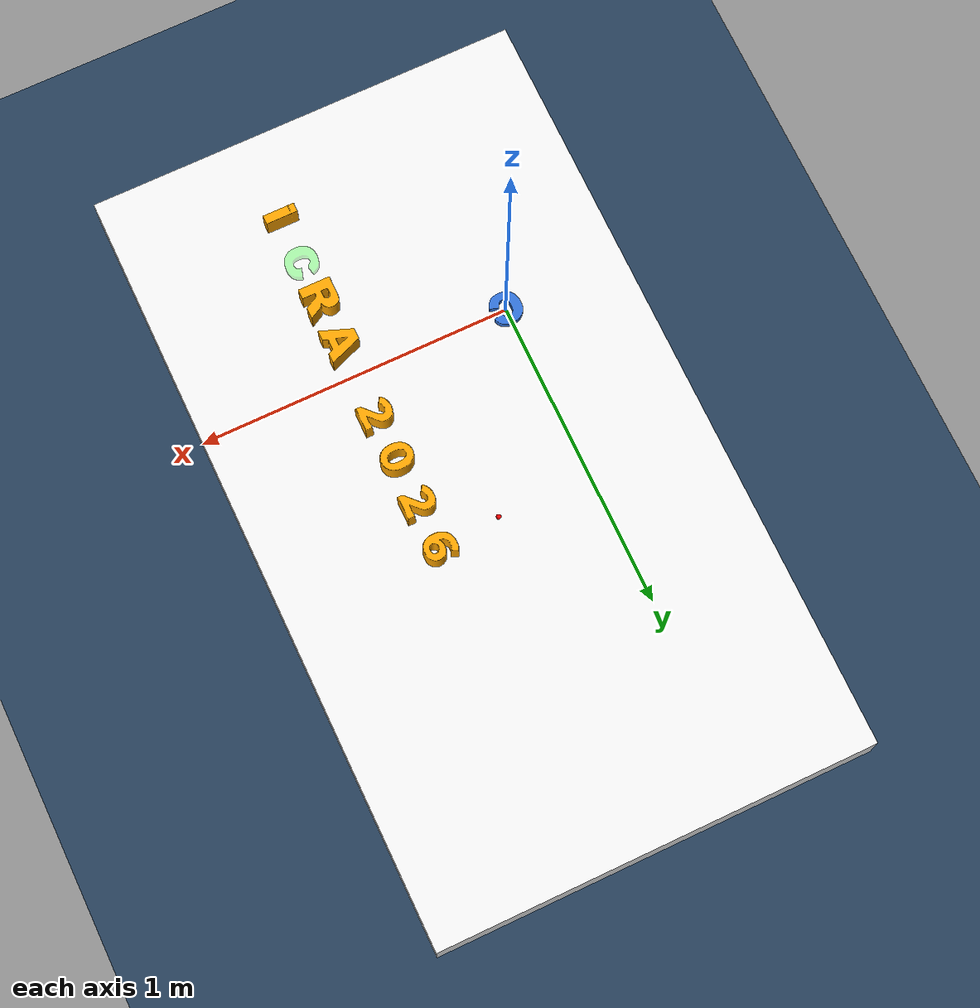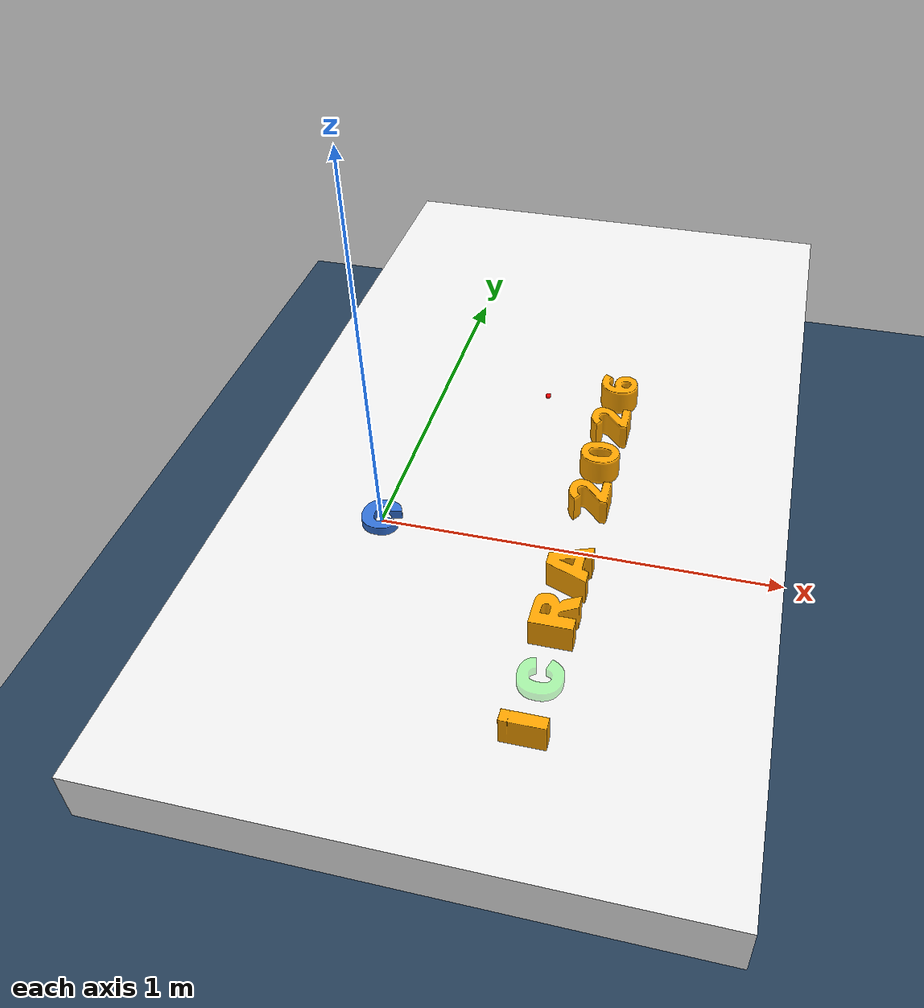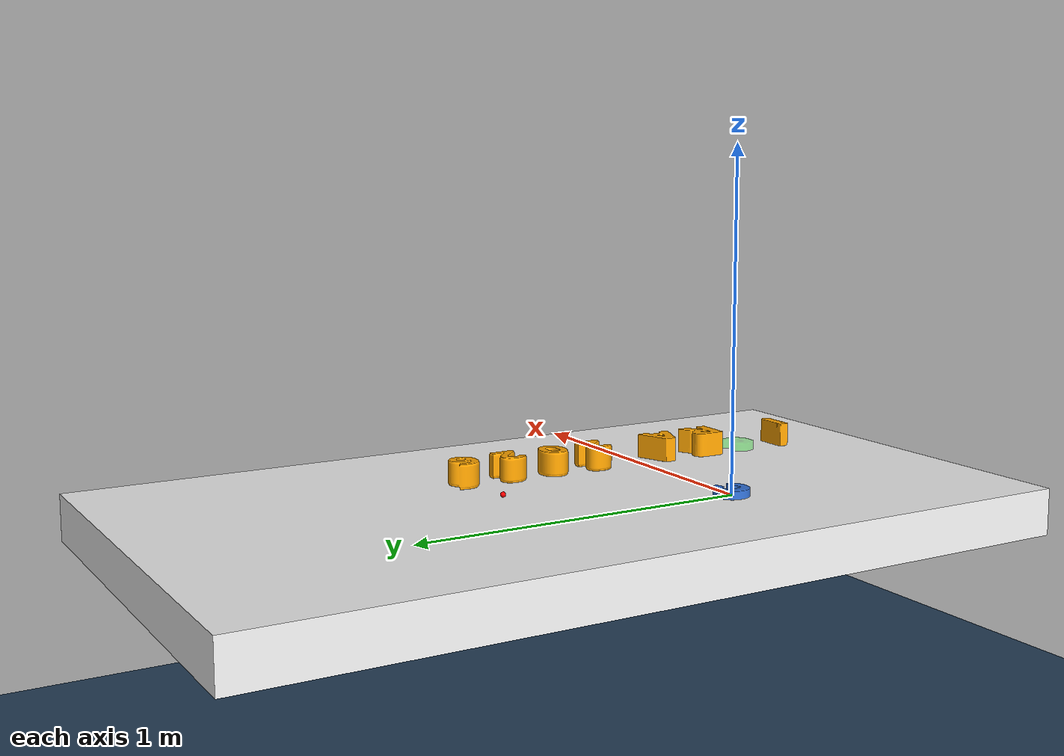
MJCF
<mujoco model="xarm6_pusht_icra_sign_point">
  <include file="common_point.xml"/>

  <asset>
    <mesh name="glyph_i" file="assets/glyph_i.obj" maxhullvert="32" scale="1 1 3"/>
    <mesh name="glyph_a" file="assets/glyph_a.obj" maxhullvert="32" scale="1 1 3"/>
    <!-- The pushed C. Visual only -- see the `block` body below. -->
    <mesh name="glyph_c" file="assets/glyph_c.obj"/>
    <mesh name="glyph_r" file="assets/glyph_r.obj" maxhullvert="32" scale="1 1 3"/>
    <mesh name="glyph_0" file="assets/glyph_0.obj" maxhullvert="32" scale="1 1 3"/>
    <mesh name="glyph_2" file="assets/glyph_2.obj" maxhullvert="32" scale="1 1 3"/>
    <mesh name="glyph_6" file="assets/glyph_6.obj" maxhullvert="32" scale="1 1 3"/>
  </asset>

  <worldbody>
    <geom name="table" type="box" size="0.70 1.25 0.07" pos="0.3 0.40 -0.07"
      rgba="0.95 0.95 0.95 1"/>

    <camera name="front" pos="2.3033 0.0400 1.0375"
      xyaxes="0.0000 1.0000 -0.0000 -0.4226 0.0000 0.9063"/>

    <body name="goal" mocap="true" pos="0.5 -0.40 0.0125" quat="0.70711 0 0 0.70711">
      <geom class="goal" name="goal_c" type="mesh" mesh="glyph_c"/>
    </body>

    <body name="local_goal" mocap="true" pos="0.0 0.0 0.0125" quat="1 0 0 0">
      <geom class="local_goal" name="local_goal_c" type="mesh"
            mesh="glyph_c"/>
    </body>

    <body name="block" pos="0.0 0.0 0.0125">
      <joint name="T_x" type="slide" axis="1 0 0" damping="0.0"/>
      <joint name="T_y" type="slide" axis="0 1 0" damping="0.0"/>
      <joint name="T_z" type="hinge" axis="0 0 1" damping="0.0"/>
      <joint name="T_zs" type="slide" axis="0 0 1" damping="0.0"/>
      <geom name="c_visual" type="mesh" mesh="glyph_c" contype="0"
            conaffinity="0" mass="0" rgba="0.2 0.45 0.85 1"/>
      <geom name="c_spine" type="box" size="0.0160 0.0515 0.0125" pos="-0.0323 0.0 0.0" mass="0.0348" rgba="0.2 0.45 0.85 0"/>
      <geom name="c_top_bar" type="box" size="0.0483 0.0160 0.0125" pos="0.0 0.0355 0.0" mass="0.0326" rgba="0.2 0.45 0.85 0"/>
      <geom name="c_bot_bar" type="box" size="0.0483 0.0160 0.0125" pos="0.0 -0.0355 0.0" mass="0.0326" rgba="0.2 0.45 0.85 0"/>
    </body>

    <!-- Declared after `block`, matching pusht_clutter.xml's ordering --
         see common_point.xml. z=0.0125 matches the C-block's own height. -->
    <body name="pusher" pos="0.3 0.58 0.0125">
      <joint name="root_x" type="slide" axis="1 0 0" damping="0.05"/>
      <joint name="root_y" type="slide" axis="0 1 0" damping="0.05"/>
      <geom name="pusher" type="sphere" size="0.008" mass="1.0" rgba="1 0 0 1" solref="0.01 1"/>
      <site name="pusher" pos="0 0 0" rgba="0 0 0 0"/>
    </body>

    <geom class="tabletop_obstacle" name="letter_I" type="mesh"
      mesh="glyph_i" pos="0.5 -0.55 0.0375" euler="0 0 90"/>
    <geom class="tabletop_obstacle" name="letter_R" type="mesh"
      mesh="glyph_r" pos="0.5 -0.25 0.0375" euler="0 0 90"/>

    <!-- The A is now the source's own mesh like every other glyph; it
         used to be three boxes because `alphabets/` shipped no A. -->
    <geom class="tabletop_obstacle" name="letter_A" type="mesh"
      mesh="glyph_a" pos="0.5 -0.1 0.0375" euler="0 0 90"/>

    <geom class="tabletop_obstacle" name="digit_2" type="mesh"
      mesh="glyph_2" pos="0.5 0.15 0.0375" euler="0 0 90"/>
    <geom class="tabletop_obstacle" name="digit_0" type="mesh"
      mesh="glyph_0" pos="0.5 0.3 0.0375" euler="0 0 90"/>
    <geom class="tabletop_obstacle" name="digit_2b" type="mesh"
      mesh="glyph_2" pos="0.5 0.45 0.0375" euler="0 0 90"/>
    <geom class="tabletop_obstacle" name="digit_6" type="mesh"
      mesh="glyph_6" pos="0.5 0.6 0.0375" euler="0 0 90"/>
  </worldbody>

  <actuator>
    <velocity name="x_motor" joint="root_x" ctrllimited="true" ctrlrange="-0.6 0.6" kv="100" forcerange="-60 60"/>
    <velocity name="y_motor" joint="root_y" ctrllimited="true" ctrlrange="-0.6 0.6" kv="100" forcerange="-60 60"/>
  </actuator>

  <contact>
    <pair geom1="c_spine" geom2="table" condim="3" friction="0.3 0.3 0.005 0.0001 0.0001" solimp="0.999 0.9999 0.0001"/>
    <pair geom1="c_top_bar" geom2="table" condim="3" friction="0.3 0.3 0.005 0.0001 0.0001" solimp="0.999 0.9999 0.0001"/>
    <pair geom1="c_bot_bar" geom2="table" condim="3" friction="0.3 0.3 0.005 0.0001 0.0001" solimp="0.999 0.9999 0.0001"/>
  </contact>

  <sensor>
    <framepos name="position" objtype="body" objname="block" reftype="body" refname="goal"/>
    <framequat name="orientation" objtype="body" objname="block" reftype="body" refname="goal"/>
  </sensor>

  <keyframe>
    <key name="start" qpos="0.3 0.400 0 0 0 0"/>
  </keyframe>

  <statistic center="0.40 0.04 0" extent="1.0"/>
</mujoco>

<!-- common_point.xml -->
<mujoco model="xarm6_pusht_tabletop_common_point">
  <compiler angle="degree"/>

  <option timestep="0.01" gravity="0 0 -9.81" iterations="20" ls_iterations="20" integrator="implicitfast"/>

  <default>
    <geom friction="0.5 0.005 0.0001" solref="0.004 1" solimp="0.9 0.95 0.001"/>
    <default class="goal">
      <geom conaffinity="0" contype="0" rgba="0 1 0 0.3"/>
    </default>
    <default class="local_goal">
      <geom conaffinity="0" contype="0" rgba="0 0.30 0.95 0.25"/>
    </default>
    <default class="obstacle">
      <geom conaffinity="1" contype="1" rgba="0.5 0.5 0.5 1"/>
    </default>
    <default class="tabletop_obstacle">
      <geom conaffinity="1" contype="1" rgba="1.0 0.647 0.0 1"/>
    </default>
  </default>

  <visual>
    <headlight diffuse="0.6 0.6 0.6" ambient="0.3 0.3 0.3" specular="0 0 0"/>
    <rgba haze="0.15 0.25 0.35 1"/>
  </visual>

  <asset>
    <texture type="skybox" builtin="gradient" rgb1="0.3 0.5 0.7" rgb2="0 0 0" width="512" height="3072"/>
    <texture type="2d" name="groundplane" builtin="checker" mark="edge" rgb1="0.2 0.3 0.4" rgb2="0.1 0.2 0.3"
      markrgb="0.8 0.8 0.8" width="300" height="300"/>
    <material name="groundplane" texture="groundplane" texuniform="true" texrepeat="5 5" reflectance="0.2"/>
  </asset>

  <worldbody>
    <light pos="0.3 0.0 1"/>
    <!-- Room floor at the lab table's own foot, 0.91 m below the top -- see
         common.xml's own floor comment for the contype/conaffinity split. -->
    <geom name="floor" size="0 0 .125" type="plane" pos="0 0 -0.91"
      contype="2" conaffinity="2" material="groundplane"/>
  </worldbody>
</mujoco>
